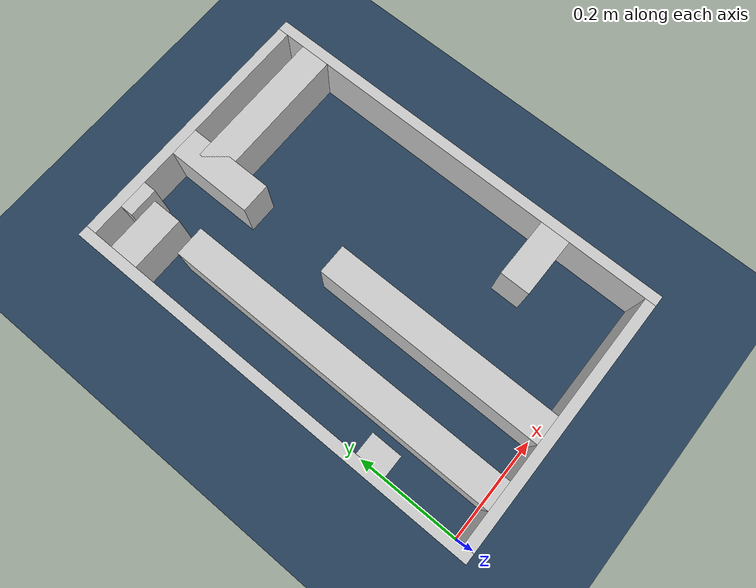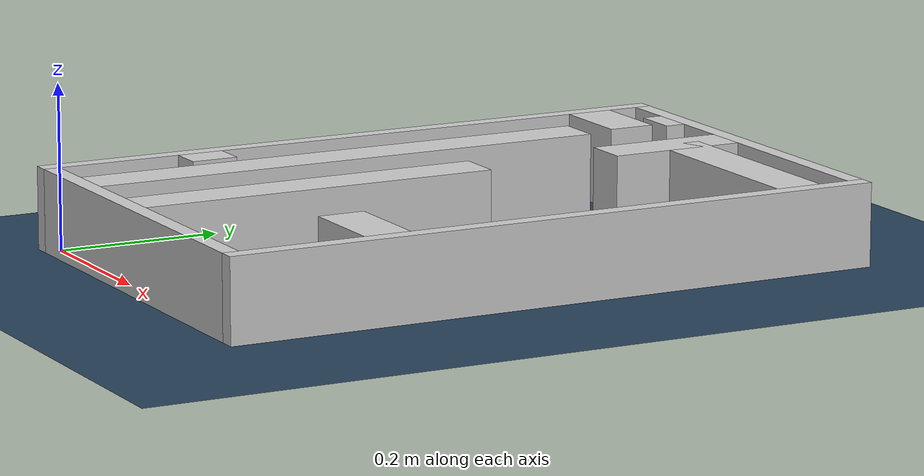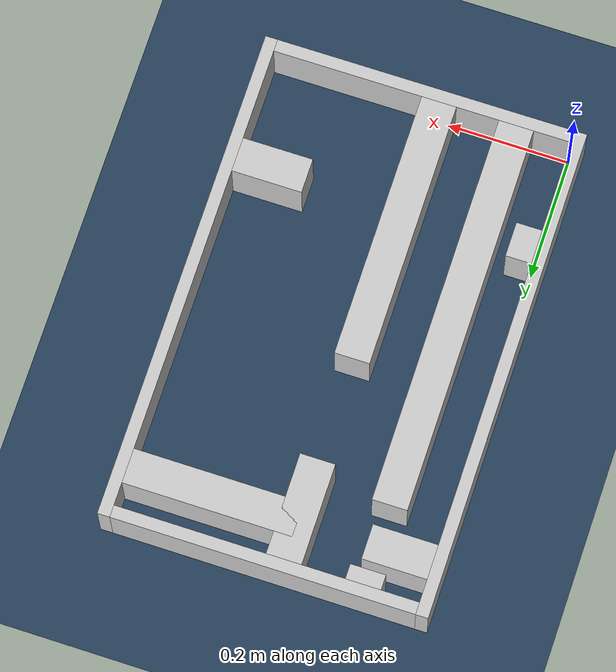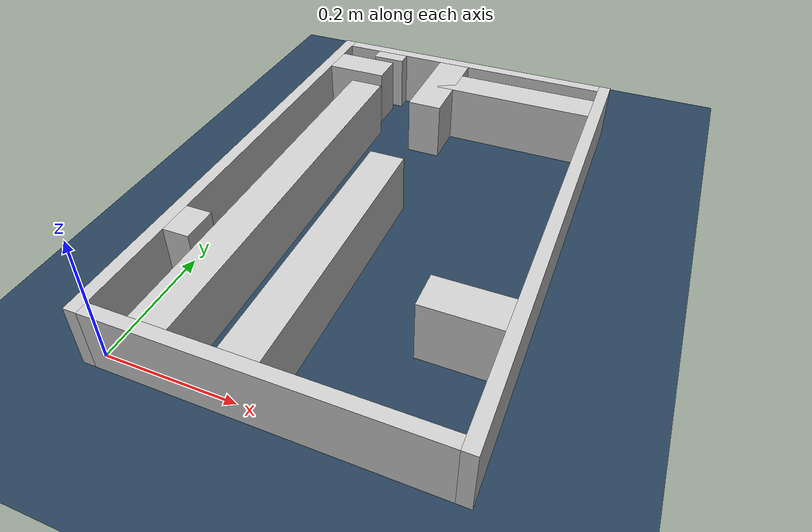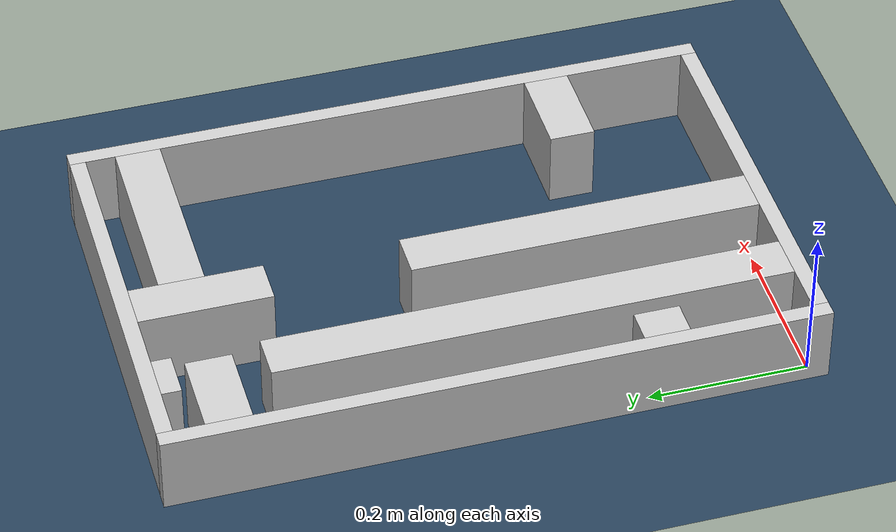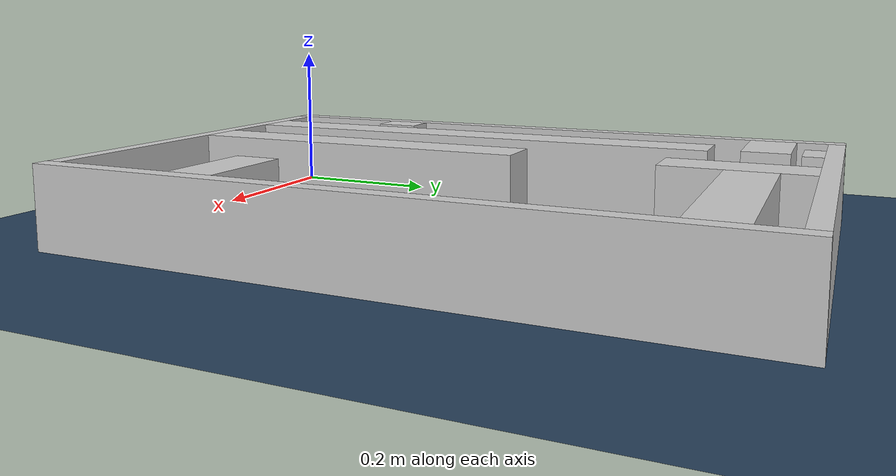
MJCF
<?xml version="1.0" ?>
<mujoco model="generated_real_template">
  <compiler angle="degree"/>
  <option timestep="0.002" integrator="implicitfast" iterations="100" cone="elliptic"/>
  <default>
    <geom density="1"/>
  </default>
  <asset>
    <texture builtin="gradient" height="3072" rgb1="0.3 0.5 0.7" rgb2="0 0 0" type="skybox" width="512"/>
    <texture builtin="checker" height="300" mark="edge" markrgb="0.8 0.8 0.8" name="groundplane" rgb1="0.2 0.3 0.4" rgb2="0.1 0.2 0.3" type="2d" width="300"/>
    <material name="groundplane" reflectance="0.2" texrepeat="5 5" texture="groundplane" texuniform="true"/>
  </asset>
  <worldbody>
    <light dir="0 0 -1" directional="true" pos="0 0 1.5"/>
    <geom name="floor" type="plane" condim="4" friction="0.5 0.005 0.001" material="groundplane" size="0 0 0.05"/>
    <body name="walls">
      <geom name="wall_boundary_left" type="box" condim="4" friction="1.0 0.005 0.0001" rgba="0.8 0.8 0.8 1" pos="-0.010000 0.387500 0.050000" euler="0 0 0.000000" size="0.010000 0.407500 0.050000"/>
      <geom name="wall_boundary_right" type="box" condim="4" friction="1.0 0.005 0.0001" rgba="0.8 0.8 0.8 1" pos="0.500000 0.387500 0.050000" euler="0 0 0.000000" size="0.010000 0.407500 0.050000"/>
      <geom name="wall_boundary_bottom" type="box" condim="4" friction="1.0 0.005 0.0001" rgba="0.8 0.8 0.8 1" pos="0.245000 -0.010000 0.050000" euler="0 0 0.000000" size="0.245000 0.010000 0.050000"/>
      <geom name="wall_boundary_top" type="box" condim="4" friction="1.0 0.005 0.0001" rgba="0.8 0.8 0.8 1" pos="0.245000 0.785000 0.050000" euler="0 0 0.000000" size="0.245000 0.010000 0.050000"/>
      <geom name="wall_inner_1_1" type="box" condim="4" friction="1.0 0.005 0.0001" rgba="0.8 0.8 0.8 1" pos="0.216894 0.220173 0.050000" euler="0 0 90.000000" size="0.220173 0.028500 0.050000"/>
      <geom name="wall_inner_1_2" type="box" condim="4" friction="1.0 0.005 0.0001" rgba="0.8 0.8 0.8 1" pos="0.216894 0.691980 0.050000" euler="0 0 90.000000" size="0.083020 0.028500 0.050000"/>
      <geom name="wall_inner_2_1" type="box" condim="4" friction="1.0 0.005 0.0001" rgba="0.8 0.8 0.8 1" pos="0.089973 0.322126 0.050000" euler="0 0 90.000000" size="0.322126 0.028500 0.050000"/>
      <geom name="wall_inner_2_2" type="box" condim="4" friction="1.0 0.005 0.0001" rgba="0.8 0.8 0.8 1" pos="0.089973 0.762716 0.050000" euler="0 0 90.000000" size="0.012284 0.028500 0.050000"/>
      <geom name="wall_inner_3_1" type="box" condim="4" friction="1.0 0.005 0.0001" rgba="0.8 0.8 0.8 1" pos="0.052439 0.709303 0.050000" euler="0 0 0.000000" size="0.052439 0.028500 0.050000"/>
      <geom name="wall_inner_3_2" type="box" condim="4" friction="1.0 0.005 0.0001" rgba="0.8 0.8 0.8 1" pos="0.352919 0.709303 0.050000" euler="0 0 0.000000" size="0.137081 0.028500 0.050000"/>
      <geom name="wall_inner_4_1" type="box" condim="4" friction="1.0 0.005 0.0001" rgba="0.8 0.8 0.8 1" pos="0.020924 0.180396 0.050000" euler="0 0 0.000000" size="0.020924 0.028500 0.050000"/>
      <geom name="wall_inner_4_2" type="box" condim="4" friction="1.0 0.005 0.0001" rgba="0.8 0.8 0.8 1" pos="0.432533 0.180396 0.050000" euler="0 0 0.000000" size="0.057467 0.028500 0.050000"/>
    </body>
  </worldbody>
</mujoco>
